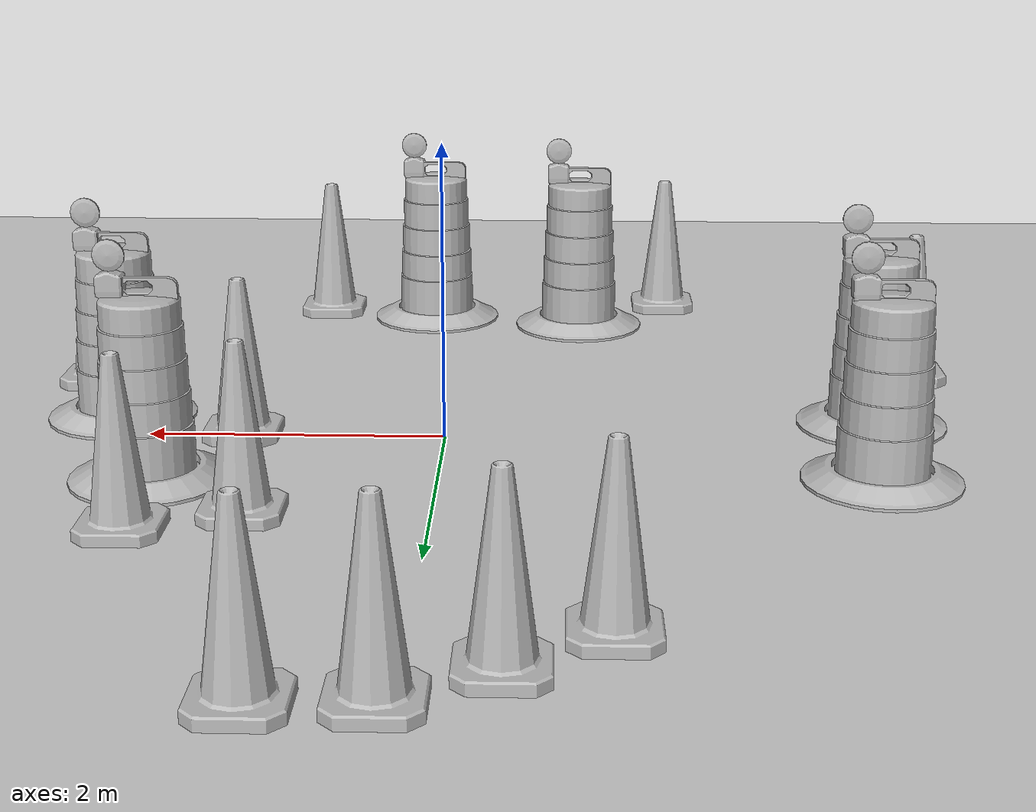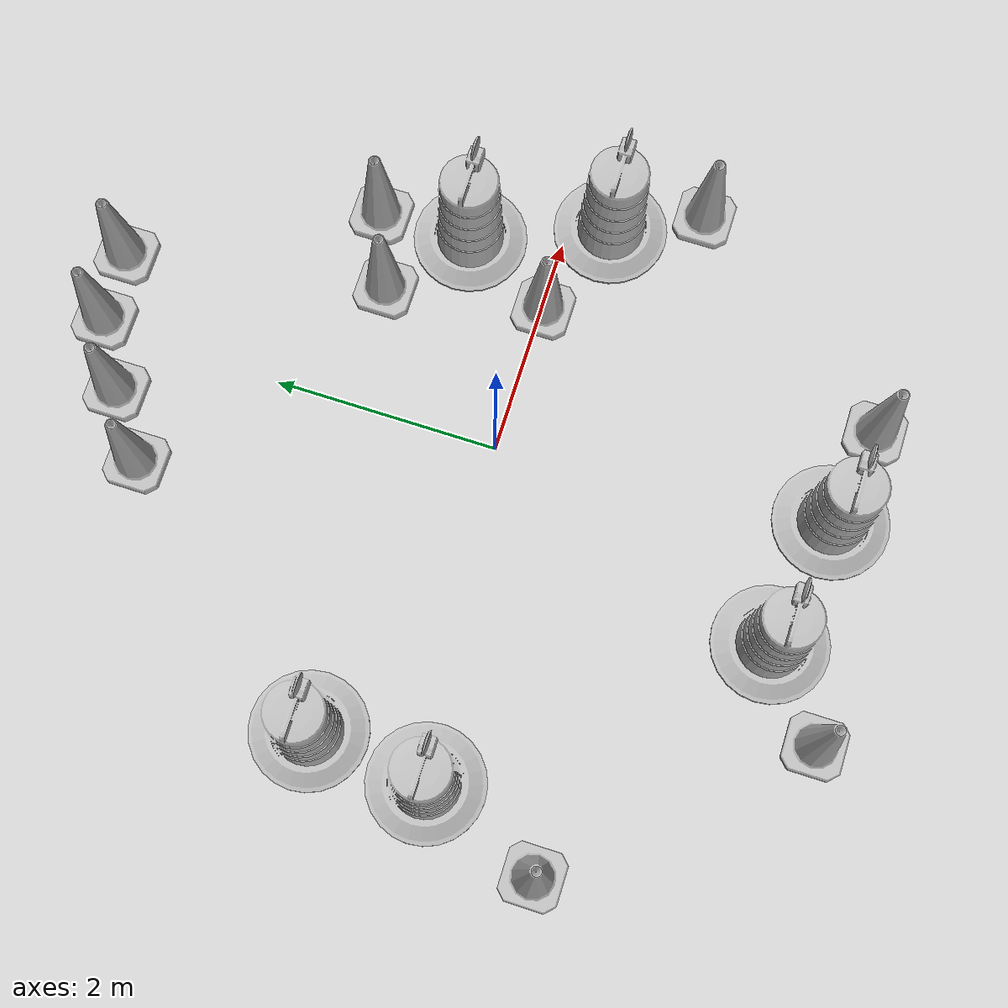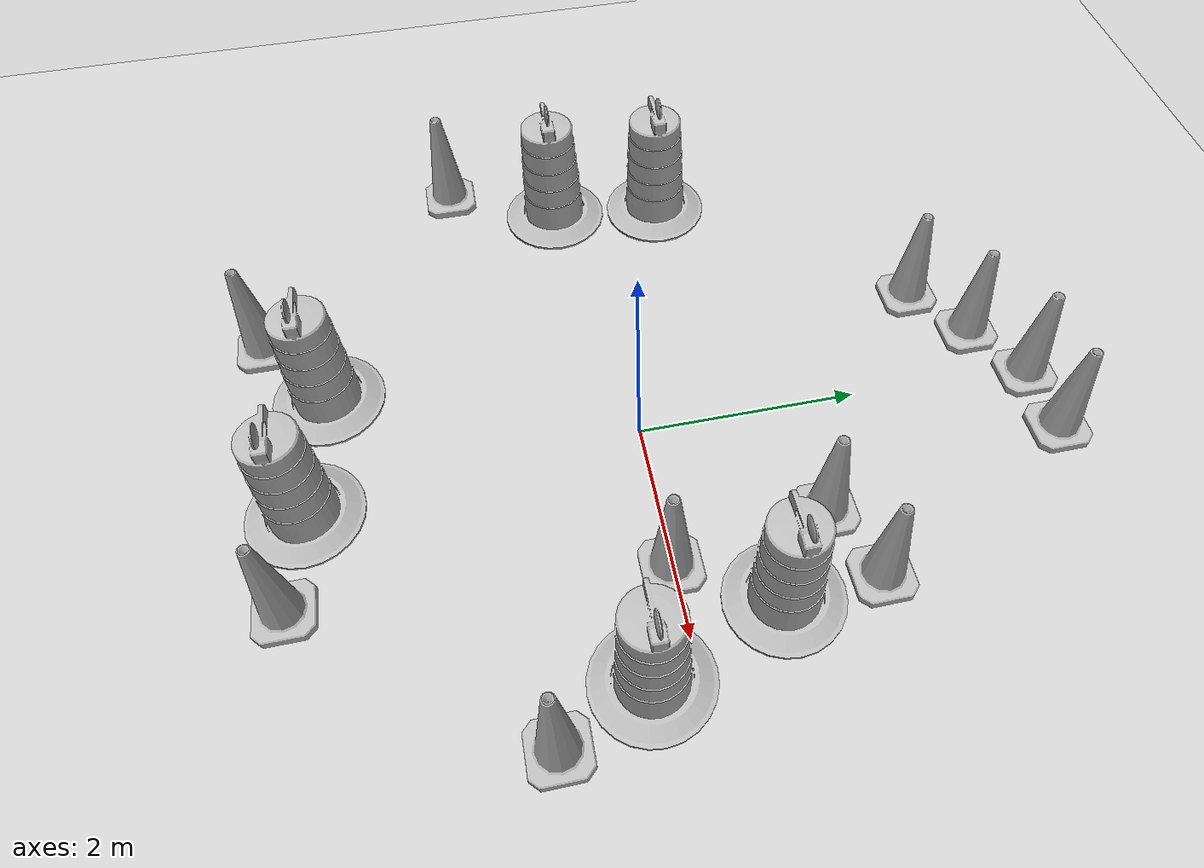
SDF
<sdf version="1.7">
 <world name="default">
  <light name="sun" type="directional">
   <pose>0 0 10 0 -0 0</pose>
   <diffuse>0.8 0.8 0.8 1</diffuse>
   <specular>0.2 0.2 0.2 1</specular>
   <attenuation>
    <range>1000</range>
    <constant>0.9</constant>
    <linear>0.01</linear>
    <quadratic>0.001</quadratic>
   </attenuation>
   <direction>-0.5 0.1 -0.9</direction>
   <spot><inner_angle>0</inner_angle><outer_angle>0</outer_angle><falloff>0</falloff></spot>
  </light>
  <model name="ground_plane">
   <static>1</static>
   <link name="link">
    <collision name="collision">
     <geometry><plane><normal>0 0 1</normal><size>100 100</size></plane></geometry>
     <surface>
      <contact><collide_bitmask>65535</collide_bitmask></contact>
      <friction><ode><mu>100</mu><mu2>50</mu2></ode></friction>
     </surface>
    </collision>
    <visual name="visual">
     <cast_shadows>0</cast_shadows>
     <geometry><plane><normal>0 0 1</normal><size>100 100</size></plane></geometry>
     <material>
      <script><uri>file://media/materials/scripts/gazebo.material</uri><name>Gazebo/Grey</name></script>
     </material>
    </visual>
   </link>
  </model>
  <gravity>0 0 -9.8</gravity>
  <magnetic_field>6e-06 2.3e-05 -4.2e-05</magnetic_field>
  <atmosphere type="adiabatic"/>
  <physics type="ode">
   <max_step_size>0.001</max_step_size>
   <real_time_factor>1</real_time_factor>
   <real_time_update_rate>1000</real_time_update_rate>
  </physics>
  <scene><ambient>0.4 0.4 0.4 1</ambient><background>0.7 0.7 0.7 1</background><shadows>1</shadows></scene>
  <spherical_coordinates>
   <surface_model>EARTH_WGS84</surface_model>
   <latitude_deg>0</latitude_deg>
   <longitude_deg>0</longitude_deg>
   <elevation>0</elevation>
   <heading_deg>0</heading_deg>
  </spherical_coordinates>
  <model name="Construction Barrel">
   <link name="link">
    <inertial>
     <pose>0 0 0.4 0 -0 0</pose>
     <mass>500</mass>
     <inertia><ixx>51.2096</ixx><iyy>51.2096</iyy><izz>25</izz><ixy>0</ixy><ixz>0</ixz><iyz>0</iyz></inertia>
    </inertial>
    <collision name="collision">
     <geometry><mesh><uri>model://construction_barrel/meshes/construction_barrel.dae</uri></mesh></geometry>
    </collision>
    <visual name="visual">
     <geometry><mesh><uri>model://construction_barrel/meshes/construction_barrel.dae</uri></mesh></geometry>
    </visual>
   </link>
   <pose>-2.9162 -0.331007 -1e-06 1e-06 -9e-06 -2.7e-05</pose>
  </model>
  <model name="Construction Barrel_0">
   <link name="link">
    <inertial>
     <pose>0 0 0.4 0 -0 0</pose>
     <mass>500</mass>
     <inertia><ixx>51.2096</ixx><iyy>51.2096</iyy><izz>25</izz><ixy>0</ixy><ixz>0</ixz><iyz>0</iyz></inertia>
    </inertial>
    <collision name="collision">
     <geometry><mesh><uri>model://construction_barrel/meshes/construction_barrel.dae</uri></mesh></geometry>
    </collision>
    <visual name="visual">
     <geometry><mesh><uri>model://construction_barrel/meshes/construction_barrel.dae</uri></mesh></geometry>
    </visual>
   </link>
   <pose>-2.79984 0.731379 -1e-06 1e-06 -9e-06 -2.6e-05</pose>
  </model>
  <model name="Construction Barrel_1">
   <link name="link">
    <inertial>
     <pose>0 0 0.4 0 -0 0</pose>
     <mass>500</mass>
     <inertia><ixx>51.2096</ixx><iyy>51.2096</iyy><izz>25</izz><ixy>0</ixy><ixz>0</ixz><iyz>0</iyz></inertia>
    </inertial>
    <collision name="collision">
     <geometry><mesh><uri>model://construction_barrel/meshes/construction_barrel.dae</uri></mesh></geometry>
    </collision>
    <visual name="visual">
     <geometry><mesh><uri>model://construction_barrel/meshes/construction_barrel.dae</uri></mesh></geometry>
    </visual>
   </link>
   <pose>2.27248 -0.3653 -1e-06 1e-06 -9e-06 -2.5e-05</pose>
  </model>
  <model name="Construction Barrel_2">
   <link name="link">
    <inertial>
     <pose>0 0 0.4 0 -0 0</pose>
     <mass>500</mass>
     <inertia><ixx>51.2096</ixx><iyy>51.2096</iyy><izz>25</izz><ixy>0</ixy><ixz>0</ixz><iyz>0</iyz></inertia>
    </inertial>
    <collision name="collision">
     <geometry><mesh><uri>model://construction_barrel/meshes/construction_barrel.dae</uri></mesh></geometry>
    </collision>
    <visual name="visual">
     <geometry><mesh><uri>model://construction_barrel/meshes/construction_barrel.dae</uri></mesh></geometry>
    </visual>
   </link>
   <pose>1.81645 0.810418 -1e-06 1e-06 -9e-06 -2.4e-05</pose>
  </model>
  <model name="Construction Barrel_3">
   <link name="link">
    <inertial>
     <pose>0 0 0.4 0 -0 0</pose>
     <mass>500</mass>
     <inertia><ixx>51.2096</ixx><iyy>51.2096</iyy><izz>25</izz><ixy>0</ixy><ixz>0</ixz><iyz>0</iyz></inertia>
    </inertial>
    <collision name="collision">
     <geometry><mesh><uri>model://construction_barrel/meshes/construction_barrel.dae</uri></mesh></geometry>
    </collision>
    <visual name="visual">
     <geometry><mesh><uri>model://construction_barrel/meshes/construction_barrel.dae</uri></mesh></geometry>
    </visual>
   </link>
   <pose>-0.929203 -2.72686 -1e-06 1e-06 -9e-06 -2.2e-05</pose>
  </model>
  <model name="Construction Barrel_4">
   <link name="link">
    <inertial>
     <pose>0 0 0.4 0 -0 0</pose>
     <mass>500</mass>
     <inertia><ixx>51.2096</ixx><iyy>51.2096</iyy><izz>25</izz><ixy>0</ixy><ixz>0</ixz><iyz>0</iyz></inertia>
    </inertial>
    <collision name="collision">
     <geometry><mesh><uri>model://construction_barrel/meshes/construction_barrel.dae</uri></mesh></geometry>
    </collision>
    <visual name="visual">
     <geometry><mesh><uri>model://construction_barrel/meshes/construction_barrel.dae</uri></mesh></geometry>
    </visual>
   </link>
   <pose>0.252778 -2.9438 -1e-06 1e-06 -9e-06 -2.1e-05</pose>
  </model>
  <model name="Construction Cone">
   <link name="link">
    <collision name="collision">
     <geometry>
      <mesh><scale>10 10 10</scale><uri>model://construction_cone/meshes/construction_cone.dae</uri></mesh>
     </geometry>
    </collision>
    <visual name="visual">
     <geometry>
      <mesh><scale>10 10 10</scale><uri>model://construction_cone/meshes/construction_cone.dae</uri></mesh>
     </geometry>
    </visual>
    <inertial>
     <inertia><ixx>1</ixx><ixy>0</ixy><ixz>0</ixz><iyy>1</iyy><iyz>0</iyz><izz>1</izz></inertia>
     <mass>1</mass>
    </inertial>
   </link>
   <pose>-1.05334 2.91863 -0 -0 -0 -0</pose>
  </model>
  <model name="Construction Cone_0">
   <link name="link">
    <collision name="collision">
     <geometry>
      <mesh><scale>10 10 10</scale><uri>model://construction_cone/meshes/construction_cone.dae</uri></mesh>
     </geometry>
    </collision>
    <visual name="visual">
     <geometry>
      <mesh><scale>10 10 10</scale><uri>model://construction_cone/meshes/construction_cone.dae</uri></mesh>
     </geometry>
    </visual>
    <inertial>
     <inertia><ixx>1</ixx><ixy>0</ixy><ixz>0</ixz><iyy>1</iyy><iyz>0</iyz><izz>1</izz></inertia>
     <mass>1</mass>
    </inertial>
   </link>
   <pose>-0.494109 3.32017 -0 0 -1e-06 0</pose>
  </model>
  <model name="Construction Cone_1">
   <link name="link">
    <collision name="collision">
     <geometry>
      <mesh><scale>10 10 10</scale><uri>model://construction_cone/meshes/construction_cone.dae</uri></mesh>
     </geometry>
    </collision>
    <visual name="visual">
     <geometry>
      <mesh><scale>10 10 10</scale><uri>model://construction_cone/meshes/construction_cone.dae</uri></mesh>
     </geometry>
    </visual>
    <inertial>
     <inertia><ixx>1</ixx><ixy>0</ixy><ixz>0</ixz><iyy>1</iyy><iyz>0</iyz><izz>1</izz></inertia>
     <mass>1</mass>
    </inertial>
   </link>
   <pose>0.092614 3.65871 -0 0 -0 0</pose>
  </model>
  <model name="Construction Cone_2">
   <link name="link">
    <collision name="collision">
     <geometry>
      <mesh><scale>10 10 10</scale><uri>model://construction_cone/meshes/construction_cone.dae</uri></mesh>
     </geometry>
    </collision>
    <visual name="visual">
     <geometry>
      <mesh><scale>10 10 10</scale><uri>model://construction_cone/meshes/construction_cone.dae</uri></mesh>
     </geometry>
    </visual>
    <inertial>
     <inertia><ixx>1</ixx><ixy>0</ixy><ixz>0</ixz><iyy>1</iyy><iyz>0</iyz><izz>1</izz></inertia>
     <mass>1</mass>
    </inertial>
   </link>
   <pose>0.728452 3.69006 -0 0 -0 0</pose>
  </model>
  <model name="Construction Cone_3">
   <link name="link">
    <collision name="collision">
     <geometry>
      <mesh><scale>10 10 10</scale><uri>model://construction_cone/meshes/construction_cone.dae</uri></mesh>
     </geometry>
    </collision>
    <visual name="visual">
     <geometry>
      <mesh><scale>10 10 10</scale><uri>model://construction_cone/meshes/construction_cone.dae</uri></mesh>
     </geometry>
    </visual>
    <inertial>
     <inertia><ixx>1</ixx><ixy>0</ixy><ixz>0</ixz><iyy>1</iyy><iyz>0</iyz><izz>1</izz></inertia>
     <mass>1</mass>
    </inertial>
   </link>
   <pose>-3.36937 -1.39349 -1e-05 -0 -0 -0</pose>
  </model>
  <model name="Construction Cone_4">
   <link name="link">
    <collision name="collision">
     <geometry>
      <mesh><scale>10 10 10</scale><uri>model://construction_cone/meshes/construction_cone.dae</uri></mesh>
     </geometry>
    </collision>
    <visual name="visual">
     <geometry>
      <mesh><scale>10 10 10</scale><uri>model://construction_cone/meshes/construction_cone.dae</uri></mesh>
     </geometry>
    </visual>
    <inertial>
     <inertia><ixx>1</ixx><ixy>0</ixy><ixz>0</ixz><iyy>1</iyy><iyz>0</iyz><izz>1</izz></inertia>
     <mass>1</mass>
    </inertial>
   </link>
   <pose>1.13528 -3.10432 -0 0 -0 0</pose>
  </model>
  <model name="Construction Cone_5">
   <link name="link">
    <collision name="collision">
     <geometry>
      <mesh><scale>10 10 10</scale><uri>model://construction_cone/meshes/construction_cone.dae</uri></mesh>
     </geometry>
    </collision>
    <visual name="visual">
     <geometry>
      <mesh><scale>10 10 10</scale><uri>model://construction_cone/meshes/construction_cone.dae</uri></mesh>
     </geometry>
    </visual>
    <inertial>
     <inertia><ixx>1</ixx><ixy>0</ixy><ixz>0</ixz><iyy>1</iyy><iyz>0</iyz><izz>1</izz></inertia>
     <mass>1</mass>
    </inertial>
   </link>
   <pose>1.36595 -0.014216 -1e-06 1e-06 -2e-06 -0</pose>
  </model>
  <model name="Construction Cone_6">
   <link name="link">
    <collision name="collision">
     <geometry>
      <mesh><scale>10 10 10</scale><uri>model://construction_cone/meshes/construction_cone.dae</uri></mesh>
     </geometry>
    </collision>
    <visual name="visual">
     <geometry>
      <mesh><scale>10 10 10</scale><uri>model://construction_cone/meshes/construction_cone.dae</uri></mesh>
     </geometry>
    </visual>
    <inertial>
     <inertia><ixx>1</ixx><ixy>0</ixy><ixz>0</ixz><iyy>1</iyy><iyz>0</iyz><izz>1</izz></inertia>
     <mass>1</mass>
    </inertial>
   </link>
   <pose>1.12654 1.38093 0 -0 -0 -0</pose>
  </model>
  <model name="Construction Cone_7">
   <link name="link">
    <collision name="collision">
     <geometry>
      <mesh><scale>10 10 10</scale><uri>model://construction_cone/meshes/construction_cone.dae</uri></mesh>
     </geometry>
    </collision>
    <visual name="visual">
     <geometry>
      <mesh><scale>10 10 10</scale><uri>model://construction_cone/meshes/construction_cone.dae</uri></mesh>
     </geometry>
    </visual>
    <inertial>
     <inertia><ixx>1</ixx><ixy>0</ixy><ixz>0</ixz><iyy>1</iyy><iyz>0</iyz><izz>1</izz></inertia>
     <mass>1</mass>
    </inertial>
   </link>
   <pose>1.79264 1.64354 -0 0 -1e-06 0</pose>
  </model>
  <model name="Construction Cone_8">
   <link name="link">
    <collision name="collision">
     <geometry>
      <mesh><scale>10 10 10</scale><uri>model://construction_cone/meshes/construction_cone.dae</uri></mesh>
     </geometry>
    </collision>
    <visual name="visual">
     <geometry>
      <mesh><scale>10 10 10</scale><uri>model://construction_cone/meshes/construction_cone.dae</uri></mesh>
     </geometry>
    </visual>
    <inertial>
     <inertia><ixx>1</ixx><ixy>0</ixy><ixz>0</ixz><iyy>1</iyy><iyz>0</iyz><izz>1</izz></inertia>
     <mass>1</mass>
    </inertial>
   </link>
   <pose>2.64021 -1.13848 -0 1e-06 -0 0</pose>
  </model>
  <model name="Construction Cone_9">
   <link name="link">
    <collision name="collision">
     <geometry>
      <mesh><scale>10 10 10</scale><uri>model://construction_cone/meshes/construction_cone.dae</uri></mesh>
     </geometry>
    </collision>
    <visual name="visual">
     <geometry>
      <mesh><scale>10 10 10</scale><uri>model://construction_cone/meshes/construction_cone.dae</uri></mesh>
     </geometry>
    </visual>
    <inertial>
     <inertia><ixx>1</ixx><ixy>0</ixy><ixz>0</ixz><iyy>1</iyy><iyz>0</iyz><izz>1</izz></inertia>
     <mass>1</mass>
    </inertial>
   </link>
   <pose>-1.64875 -3.30405 -0 0 -0 0</pose>
  </model>
 </world>
</sdf>
